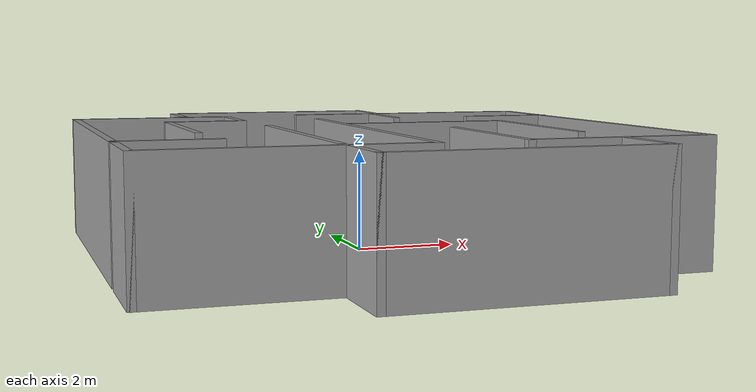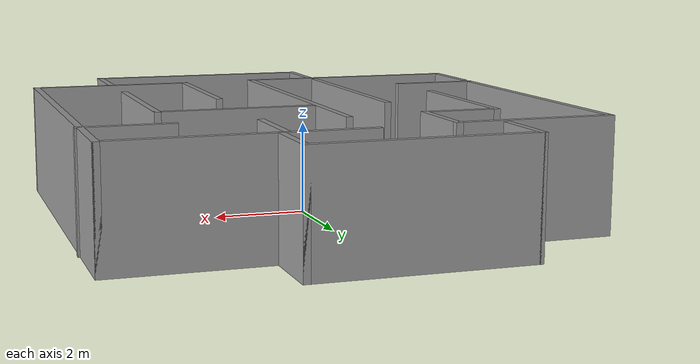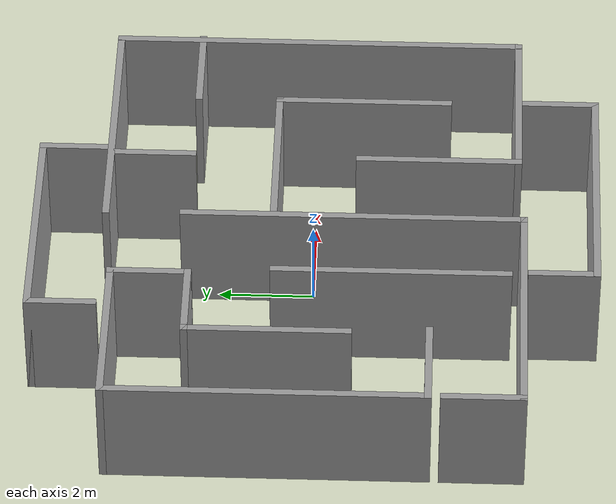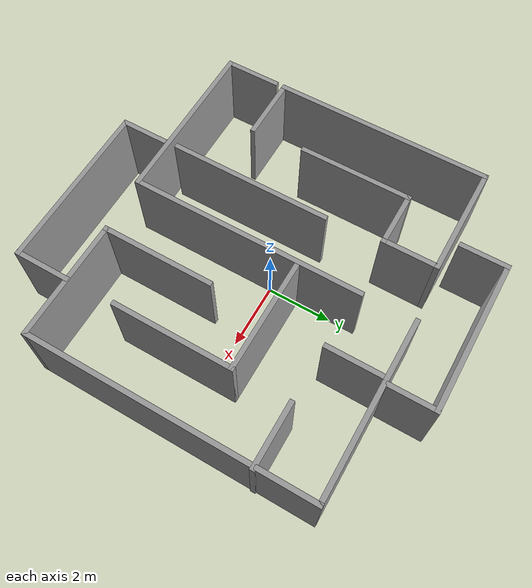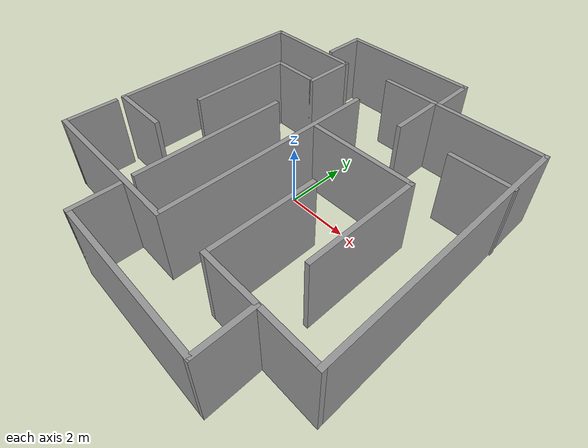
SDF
<?xml version='1.0'?>
<sdf version='1.7'>
  <model name='Matthew_Maze'>
    <pose>0.077868 -0.057735 0 0 -0 0</pose>
    <link name='Wall_11'>
      <collision name='Wall_11_Collision'>
        <geometry>
          <box>
            <size>2 0.15 2.5</size>
          </box>
        </geometry>
        <pose>0 0 1.25 0 -0 0</pose>
      </collision>
      <visual name='Wall_11_Visual'>
        <pose>0 0 1.25 0 -0 0</pose>
        <geometry>
          <box>
            <size>2 0.15 2.5</size>
          </box>
        </geometry>
        <material>
          <script>
            <uri>file://media/materials/scripts/gazebo.material</uri>
            <name>Gazebo/Grey</name>
          </script>
          <ambient>1 1 1 1</ambient>
        </material>
        <meta>
          <layer>0</layer>
        </meta>
      </visual>
      <pose>4.31464 2.61961 0 0 -0 3.14159</pose>
    </link>
    <link name='Wall_13'>
      <collision name='Wall_13_Collision'>
        <geometry>
          <box>
            <size>1.75 0.15 2.5</size>
          </box>
        </geometry>
        <pose>0 0 1.25 0 -0 0</pose>
      </collision>
      <visual name='Wall_13_Visual'>
        <pose>0 0 1.25 0 -0 0</pose>
        <geometry>
          <box>
            <size>1.75 0.15 2.5</size>
          </box>
        </geometry>
        <material>
          <script>
            <uri>file://media/materials/scripts/gazebo.material</uri>
            <name>Gazebo/Grey</name>
          </script>
          <ambient>1 1 1 1</ambient>
        </material>
        <meta>
          <layer>0</layer>
        </meta>
      </visual>
      <pose>1.63932 3.46893 0 0 -0 -1.5708</pose>
    </link>
    <link name='Wall_15'>
      <collision name='Wall_15_Collision'>
        <geometry>
          <box>
            <size>3.5 0.15 2.5</size>
          </box>
        </geometry>
        <pose>0 0 1.25 0 -0 0</pose>
      </collision>
      <visual name='Wall_15_Visual'>
        <pose>0 0 1.25 0 -0 0</pose>
        <geometry>
          <box>
            <size>3.5 0.15 2.5</size>
          </box>
        </geometry>
        <material>
          <script>
            <uri>file://media/materials/scripts/gazebo.material</uri>
            <name>Gazebo/Grey</name>
          </script>
          <ambient>1 1 1 1</ambient>
        </material>
        <meta>
          <layer>0</layer>
        </meta>
      </visual>
      <pose>-3.48964 0.915533 0 0 -0 1.5708</pose>
    </link>
    <link name='Wall_16'>
      <collision name='Wall_16_Collision'>
        <geometry>
          <box>
            <size>1.75 0.15 2.5</size>
          </box>
        </geometry>
        <pose>0 0 1.25 0 -0 0</pose>
      </collision>
      <visual name='Wall_16_Visual'>
        <pose>0 0 1.25 0 -0 0</pose>
        <geometry>
          <box>
            <size>1.75 0.15 2.5</size>
          </box>
        </geometry>
        <material>
          <script>
            <uri>file://media/materials/scripts/gazebo.material</uri>
            <name>Gazebo/Grey</name>
          </script>
          <ambient>1 1 1 1</ambient>
        </material>
        <meta>
          <layer>0</layer>
        </meta>
      </visual>
      <pose>-2.68965 2.59053 0 0 -0 0</pose>
    </link>
    <link name='Wall_17'>
      <collision name='Wall_17_Collision'>
        <geometry>
          <box>
            <size>1.75 0.15 2.5</size>
          </box>
        </geometry>
        <pose>0 0 1.25 0 -0 0</pose>
      </collision>
      <visual name='Wall_17_Visual'>
        <pose>0 0 1.25 0 -0 0</pose>
        <geometry>
          <box>
            <size>1.75 0.15 2.5</size>
          </box>
        </geometry>
        <material>
          <script>
            <uri>file://media/materials/scripts/gazebo.material</uri>
            <name>Gazebo/Grey</name>
          </script>
          <ambient>1 1 1 1</ambient>
        </material>
        <meta>
          <layer>0</layer>
        </meta>
      </visual>
      <pose>-1.88965 3.39053 0 0 -0 1.5708</pose>
    </link>
    <link name='Wall_18'>
      <collision name='Wall_18_Collision'>
        <geometry>
          <box>
            <size>3.5 0.15 2.5</size>
          </box>
        </geometry>
        <pose>0 0 1.25 0 -0 0</pose>
      </collision>
      <visual name='Wall_18_Visual'>
        <pose>0 0 1.25 0 -0 0</pose>
        <geometry>
          <box>
            <size>3.5 0.15 2.5</size>
          </box>
        </geometry>
        <material>
          <script>
            <uri>file://media/materials/scripts/gazebo.material</uri>
            <name>Gazebo/Grey</name>
          </script>
          <ambient>1 1 1 1</ambient>
        </material>
        <meta>
          <layer>0</layer>
        </meta>
      </visual>
      <pose>-3.56465 4.19053 0 0 -0 3.14159</pose>
    </link>
    <link name='Wall_19'>
      <collision name='Wall_19_Collision'>
        <geometry>
          <box>
            <size>6.75 0.15 2.5</size>
          </box>
        </geometry>
        <pose>0 0 1.25 0 -0 0</pose>
      </collision>
      <visual name='Wall_19_Visual'>
        <pose>0 0 1.25 0 -0 0</pose>
        <geometry>
          <box>
            <size>6.75 0.15 2.5</size>
          </box>
        </geometry>
        <material>
          <script>
            <uri>file://media/materials/scripts/gazebo.material</uri>
            <name>Gazebo/Grey</name>
          </script>
          <ambient>1 1 1 1</ambient>
        </material>
        <meta>
          <layer>0</layer>
        </meta>
      </visual>
      <pose>-5.23965 0.890533 0 0 -0 -1.5708</pose>
    </link>
    <link name='Wall_20'>
      <collision name='Wall_20_Collision'>
        <geometry>
          <box>
            <size>2 0.15 2.5</size>
          </box>
        </geometry>
        <pose>0 0 1.25 0 -0 0</pose>
      </collision>
      <visual name='Wall_20_Visual'>
        <pose>0 0 1.25 0 -0 0</pose>
        <geometry>
          <box>
            <size>2 0.15 2.5</size>
          </box>
        </geometry>
        <material>
          <script>
            <uri>file://media/materials/scripts/gazebo.material</uri>
            <name>Gazebo/Grey</name>
          </script>
          <ambient>1 1 1 1</ambient>
        </material>
        <meta>
          <layer>0</layer>
        </meta>
      </visual>
      <pose>-4.31464 -2.40947 0 0 -0 0</pose>
    </link>
    <link name='Wall_22'>
      <collision name='Wall_22_Collision'>
        <geometry>
          <box>
            <size>1.75 0.15 2.5</size>
          </box>
        </geometry>
        <pose>0 0 1.25 0 -0 0</pose>
      </collision>
      <visual name='Wall_22_Visual'>
        <pose>0 0 1.25 0 -0 0</pose>
        <geometry>
          <box>
            <size>1.75 0.15 2.5</size>
          </box>
        </geometry>
        <material>
          <script>
            <uri>file://media/materials/scripts/gazebo.material</uri>
            <name>Gazebo/Grey</name>
          </script>
          <ambient>1 1 1 1</ambient>
        </material>
        <meta>
          <layer>0</layer>
        </meta>
      </visual>
      <pose>-5.23953 -3.5306 0 0 -0 -1.5708</pose>
    </link>
    <link name='Wall_23'>
      <collision name='Wall_23_Collision'>
        <geometry>
          <box>
            <size>5.25 0.15 2.5</size>
          </box>
        </geometry>
        <pose>0 0 1.25 0 -0 0</pose>
      </collision>
      <visual name='Wall_23_Visual'>
        <pose>0 0 1.25 0 -0 0</pose>
        <geometry>
          <box>
            <size>5.25 0.15 2.5</size>
          </box>
        </geometry>
        <material>
          <script>
            <uri>file://media/materials/scripts/gazebo.material</uri>
            <name>Gazebo/Grey</name>
          </script>
          <ambient>1 1 1 1</ambient>
        </material>
        <meta>
          <layer>0</layer>
        </meta>
      </visual>
      <pose>-2.68953 -4.3306 0 0 -0 0</pose>
    </link>
    <link name='Wall_24'>
      <collision name='Wall_24_Collision'>
        <geometry>
          <box>
            <size>7.25 0.15 2.5</size>
          </box>
        </geometry>
        <pose>0 0 1.25 0 -0 0</pose>
      </collision>
      <visual name='Wall_24_Visual'>
        <pose>0 0 1.25 0 -0 0</pose>
        <geometry>
          <box>
            <size>7.25 0.15 2.5</size>
          </box>
        </geometry>
        <material>
          <script>
            <uri>file://media/materials/scripts/gazebo.material</uri>
            <name>Gazebo/Grey</name>
          </script>
          <ambient>1 1 1 1</ambient>
        </material>
        <meta>
          <layer>0</layer>
        </meta>
      </visual>
      <pose>-0.139526 -0.780597 0 0 -0 1.5708</pose>
    </link>
    <link name='Wall_26'>
      <collision name='Wall_26_Collision'>
        <geometry>
          <box>
            <size>3.5 0.15 2.5</size>
          </box>
        </geometry>
        <pose>0 0 1.25 0 -0 0</pose>
      </collision>
      <visual name='Wall_26_Visual'>
        <pose>0 0 1.25 0 -0 0</pose>
        <geometry>
          <box>
            <size>3.5 0.15 2.5</size>
          </box>
        </geometry>
        <material>
          <script>
            <uri>file://media/materials/scripts/gazebo.material</uri>
            <name>Gazebo/Grey</name>
          </script>
          <ambient>1 1 1 1</ambient>
        </material>
        <meta>
          <layer>0</layer>
        </meta>
      </visual>
      <pose>1.68512 0.889845 0 0 -0 0</pose>
    </link>
    <link name='Wall_27'>
      <collision name='Wall_27_Collision'>
        <geometry>
          <box>
            <size>3.75 0.15 2.5</size>
          </box>
        </geometry>
        <pose>0 0 1.25 0 -0 0</pose>
      </collision>
      <visual name='Wall_27_Visual'>
        <pose>0 0 1.25 0 -0 0</pose>
        <geometry>
          <box>
            <size>3.75 0.15 2.5</size>
          </box>
        </geometry>
        <material>
          <script>
            <uri>file://media/materials/scripts/gazebo.material</uri>
            <name>Gazebo/Grey</name>
          </script>
          <ambient>1 1 1 1</ambient>
        </material>
        <meta>
          <layer>0</layer>
        </meta>
      </visual>
      <pose>3.36012 -0.910155 0 0 -0 -1.5708</pose>
    </link>
    <link name='Wall_29'>
      <collision name='Wall_29_Collision'>
        <geometry>
          <box>
            <size>5 0.15 2.5</size>
          </box>
        </geometry>
        <pose>0 0 1.25 0 -0 0</pose>
      </collision>
      <visual name='Wall_29_Visual'>
        <pose>0 0 1.25 0 -0 0</pose>
        <geometry>
          <box>
            <size>5 0.15 2.5</size>
          </box>
        </geometry>
        <material>
          <script>
            <uri>file://media/materials/scripts/gazebo.material</uri>
            <name>Gazebo/Grey</name>
          </script>
          <ambient>1 1 1 1</ambient>
        </material>
        <meta>
          <layer>0</layer>
        </meta>
      </visual>
      <pose>-1.73976 -1.59287 0 0 -0 1.5708</pose>
    </link>
    <link name='Wall_32'>
      <collision name='Wall_32_Collision'>
        <geometry>
          <box>
            <size>1.5 0.15 2.5</size>
          </box>
        </geometry>
        <pose>0 0 1.25 0 -0 0</pose>
      </collision>
      <visual name='Wall_32_Visual'>
        <pose>0 0 1.25 0 -0 0</pose>
        <geometry>
          <box>
            <size>1.5 0.15 2.5</size>
          </box>
        </geometry>
        <material>
          <script>
            <uri>file://media/materials/scripts/gazebo.material</uri>
            <name>Gazebo/Grey</name>
          </script>
          <ambient>1 1 1 1</ambient>
        </material>
        <meta>
          <layer>0</layer>
        </meta>
      </visual>
      <pose>-1.69452 -5.16355 0 0 -0 -1.5708</pose>
    </link>
    <link name='Wall_33'>
      <collision name='Wall_33_Collision'>
        <geometry>
          <box>
            <size>5.25 0.15 2.5</size>
          </box>
        </geometry>
        <pose>0 0 1.25 0 -0 0</pose>
      </collision>
      <visual name='Wall_33_Visual'>
        <pose>0 0 1.25 0 -0 0</pose>
        <geometry>
          <box>
            <size>5.25 0.15 2.5</size>
          </box>
        </geometry>
        <material>
          <script>
            <uri>file://media/materials/scripts/gazebo.material</uri>
            <name>Gazebo/Grey</name>
          </script>
          <ambient>1 1 1 1</ambient>
        </material>
        <meta>
          <layer>0</layer>
        </meta>
      </visual>
      <pose>0.855481 -5.83855 0 0 -0 0</pose>
    </link>
    <link name='Wall_34'>
      <collision name='Wall_34_Collision'>
        <geometry>
          <box>
            <size>1.75 0.15 2.5</size>
          </box>
        </geometry>
        <pose>0 0 1.25 0 -0 0</pose>
      </collision>
      <visual name='Wall_34_Visual'>
        <pose>0 0 1.25 0 -0 0</pose>
        <geometry>
          <box>
            <size>1.75 0.15 2.5</size>
          </box>
        </geometry>
        <material>
          <script>
            <uri>file://media/materials/scripts/gazebo.material</uri>
            <name>Gazebo/Grey</name>
          </script>
          <ambient>1 1 1 1</ambient>
        </material>
        <meta>
          <layer>0</layer>
        </meta>
      </visual>
      <pose>3.40548 -5.03855 0 0 -0 1.5708</pose>
    </link>
    <link name='Wall_39'>
      <collision name='Wall_39_Collision'>
        <geometry>
          <box>
            <size>1.5 0.15 2.5</size>
          </box>
        </geometry>
        <pose>0 0 1.25 0 -0 0</pose>
      </collision>
      <visual name='Wall_39_Visual'>
        <pose>0 0 1.25 0 -0 0</pose>
        <geometry>
          <box>
            <size>1.5 0.15 2.5</size>
          </box>
        </geometry>
        <material>
          <script>
            <uri>file://media/materials/scripts/gazebo.material</uri>
            <name>Gazebo/Grey</name>
          </script>
          <ambient>1 1 1 1</ambient>
        </material>
        <meta>
          <layer>0</layer>
        </meta>
      </visual>
      <pose>-2.8244 5.16355 0 0 -0 1.5708</pose>
    </link>
    <link name='Wall_40'>
      <collision name='Wall_40_Collision'>
        <geometry>
          <box>
            <size>4.75 0.15 2.5</size>
          </box>
        </geometry>
        <pose>0 0 1.25 0 -0 0</pose>
      </collision>
      <visual name='Wall_40_Visual'>
        <pose>0 0 1.25 0 -0 0</pose>
        <geometry>
          <box>
            <size>4.75 0.15 2.5</size>
          </box>
        </geometry>
        <material>
          <script>
            <uri>file://media/materials/scripts/gazebo.material</uri>
            <name>Gazebo/Grey</name>
          </script>
          <ambient>1 1 1 1</ambient>
        </material>
        <meta>
          <layer>0</layer>
        </meta>
      </visual>
      <pose>-0.524402 5.83855 0 0 -0 0</pose>
    </link>
    <link name='Wall_41'>
      <collision name='Wall_41_Collision'>
        <geometry>
          <box>
            <size>1.5 0.15 2.5</size>
          </box>
        </geometry>
        <pose>0 0 1.25 0 -0 0</pose>
      </collision>
      <visual name='Wall_41_Visual'>
        <pose>0 0 1.25 0 -0 0</pose>
        <geometry>
          <box>
            <size>1.5 0.15 2.5</size>
          </box>
        </geometry>
        <material>
          <script>
            <uri>file://media/materials/scripts/gazebo.material</uri>
            <name>Gazebo/Grey</name>
          </script>
          <ambient>1 1 1 1</ambient>
        </material>
        <meta>
          <layer>0</layer>
        </meta>
      </visual>
      <pose>1.7756 5.16355 0 0 -0 -1.5708</pose>
    </link>
    <link name='Wall_5'>
      <collision name='Wall_5_Collision'>
        <geometry>
          <box>
            <size>5.5 0.15 2.5</size>
          </box>
        </geometry>
        <pose>0 0 1.25 0 -0 0</pose>
      </collision>
      <visual name='Wall_5_Visual'>
        <pose>0 0 1.25 0 -0 0</pose>
        <geometry>
          <box>
            <size>5.5 0.15 2.5</size>
          </box>
        </geometry>
        <material>
          <script>
            <uri>file://media/materials/scripts/gazebo.material</uri>
            <name>Gazebo/Grey</name>
          </script>
          <ambient>1 1 1 1</ambient>
        </material>
        <meta>
          <layer>0</layer>
        </meta>
      </visual>
      <pose>2.52421 4.38961 0 0 -0 0</pose>
    </link>
    <link name='Wall_6'>
      <collision name='Wall_6_Collision'>
        <geometry>
          <box>
            <size>0.15 0.15 2.5</size>
          </box>
        </geometry>
        <pose>0 0 1.25 0 -0 0</pose>
      </collision>
      <visual name='Wall_6_Visual'>
        <pose>0 0 1.25 0 -0 0</pose>
        <geometry>
          <box>
            <size>0.15 0.15 2.5</size>
          </box>
        </geometry>
        <material>
          <script>
            <uri>file://media/materials/scripts/gazebo.material</uri>
            <name>Gazebo/Grey</name>
          </script>
          <ambient>1 1 1 1</ambient>
        </material>
        <meta>
          <layer>0</layer>
        </meta>
      </visual>
      <pose>5.19921 4.38961 0 0 -0 0</pose>
    </link>
    <link name='Wall_7'>
      <collision name='Wall_7_Collision'>
        <geometry>
          <box>
            <size>8.75 0.15 2.5</size>
          </box>
        </geometry>
        <pose>0 0 1.25 0 -0 0</pose>
      </collision>
      <visual name='Wall_7_Visual'>
        <pose>0 0 1.25 0 -0 0</pose>
        <geometry>
          <box>
            <size>8.75 0.15 2.5</size>
          </box>
        </geometry>
        <material>
          <script>
            <uri>file://media/materials/scripts/gazebo.material</uri>
            <name>Gazebo/Grey</name>
          </script>
          <ambient>1 1 1 1</ambient>
        </material>
        <meta>
          <layer>0</layer>
        </meta>
      </visual>
      <pose>5.19921 0.089607 0 0 -0 -1.5708</pose>
    </link>
    <link name='Wall_8'>
      <collision name='Wall_8_Collision'>
        <geometry>
          <box>
            <size>3.75 0.15 2.5</size>
          </box>
        </geometry>
        <pose>0 0 1.25 0 -0 0</pose>
      </collision>
      <visual name='Wall_8_Visual'>
        <pose>0 0 1.25 0 -0 0</pose>
        <geometry>
          <box>
            <size>3.75 0.15 2.5</size>
          </box>
        </geometry>
        <material>
          <script>
            <uri>file://media/materials/scripts/gazebo.material</uri>
            <name>Gazebo/Grey</name>
          </script>
          <ambient>1 1 1 1</ambient>
        </material>
        <meta>
          <layer>0</layer>
        </meta>
      </visual>
      <pose>3.39921 -4.21039 0 0 -0 3.14159</pose>
    </link>
    <link name='Wall_9'>
      <collision name='Wall_9_Collision'>
        <geometry>
          <box>
            <size>3.5 0.15 2.5</size>
          </box>
        </geometry>
        <pose>0 0 1.25 0 -0 0</pose>
      </collision>
      <visual name='Wall_9_Visual'>
        <pose>0 0 1.25 0 -0 0</pose>
        <geometry>
          <box>
            <size>3.5 0.15 2.5</size>
          </box>
        </geometry>
        <material>
          <script>
            <uri>file://media/materials/scripts/gazebo.material</uri>
            <name>Gazebo/Grey</name>
          </script>
          <ambient>1 1 1 1</ambient>
        </material>
        <meta>
          <layer>0</layer>
        </meta>
      </visual>
      <pose>1.59921 -2.53539 0 0 -0 1.5708</pose>
    </link>
    <static>1</static>
  </model>
</sdf>
